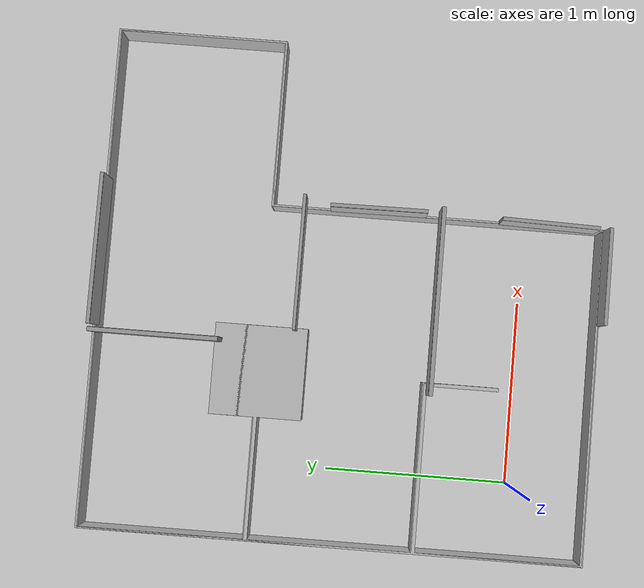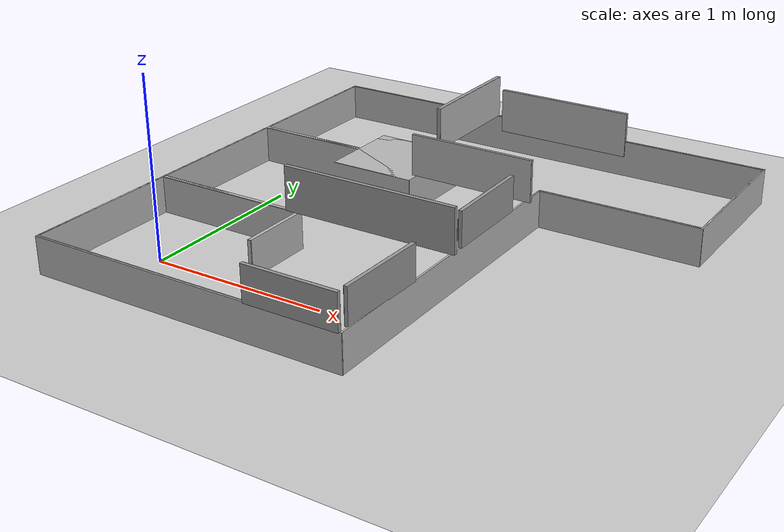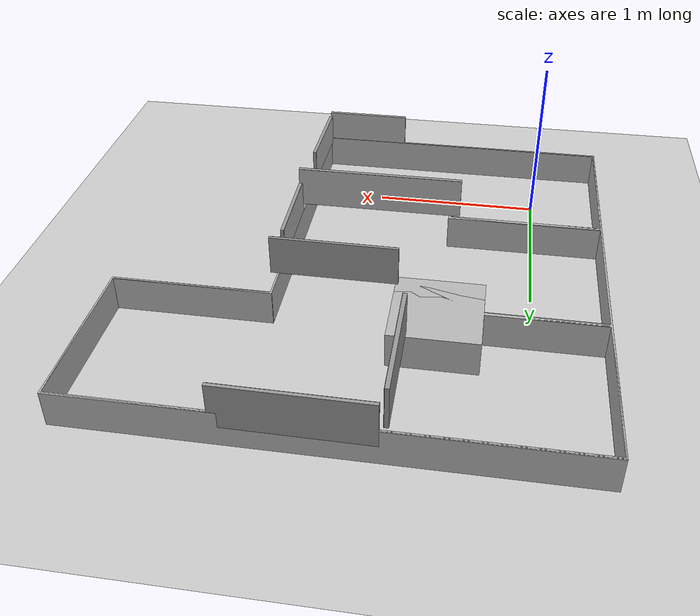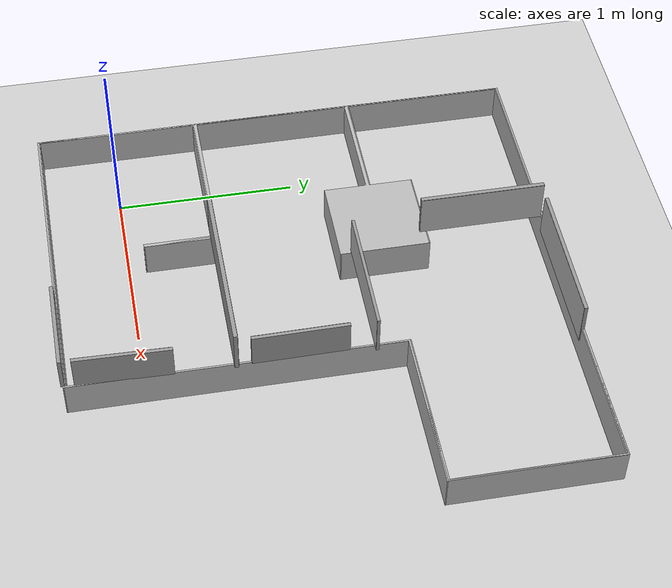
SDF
<sdf version="1.7">
 <world name="default">
  <light name="sun" type="directional">
   <pose>0 0 10 0 -0 0</pose>
   <diffuse>0.8 0.8 0.8 1</diffuse>
   <specular>0.2 0.2 0.2 1</specular>
   <attenuation>
    <range>1000</range>
    <constant>0.9</constant>
    <linear>0.01</linear>
    <quadratic>0.001</quadratic>
   </attenuation>
   <direction>-0.5 0.1 -0.9</direction>
   <spot><inner_angle>0</inner_angle><outer_angle>0</outer_angle><falloff>0</falloff></spot>
  </light>
  <model name="ground_plane">
   <static>1</static>
   <link name="link">
    <collision name="collision">
     <geometry><plane><normal>0 0 1</normal><size>100 100</size></plane></geometry>
     <surface>
      <contact><collide_bitmask>65535</collide_bitmask></contact>
      <friction><ode><mu>100</mu><mu2>50</mu2></ode></friction>
     </surface>
    </collision>
    <visual name="visual">
     <cast_shadows>0</cast_shadows>
     <geometry><plane><normal>0 0 1</normal><size>100 100</size></plane></geometry>
     <material>
      <script><uri>file://media/materials/scripts/gazebo.material</uri><name>Gazebo/Grey</name></script>
     </material>
    </visual>
   </link>
  </model>
  <gravity>0 0 -9.8</gravity>
  <magnetic_field>6e-06 2.3e-05 -4.2e-05</magnetic_field>
  <atmosphere type="adiabatic"/>
  <physics type="ode">
   <max_step_size>0.001</max_step_size>
   <real_time_factor>1</real_time_factor>
   <real_time_update_rate>1000</real_time_update_rate>
  </physics>
  <scene><ambient>0.4 0.4 0.4 1</ambient><background>0.7 0.7 0.7 1</background><shadows>1</shadows></scene>
  <audio><device>default</device></audio>
  <spherical_coordinates>
   <surface_model>EARTH_WGS84</surface_model>
   <latitude_deg>0</latitude_deg>
   <longitude_deg>0</longitude_deg>
   <elevation>0</elevation>
   <heading_deg>0</heading_deg>
  </spherical_coordinates>
  <model name="1">
   <static>1</static>
   <link name="link_0">
    <pose>0 0 0 0 0 -1.57106</pose>
    <visual name="visual">
     <geometry><box><size>0.019959 0.522549 0.197075</size></box></geometry>
     <material>
      <script><uri>file://media/materials/scripts/gazebo.material</uri><name>Gazebo/Grey</name></script>
     </material>
    </visual>
    <visual name="signboard_visual">
     <pose>-0.01 0 0 0 -0 0</pose>
     <geometry><box><size>0.001 0.522549 0.197075</size></box></geometry>
     <material>
      <script>
       <uri>model://1/materials/scripts</uri>
       <uri>model://1/materials/textures</uri>
       <name>Model_1/Texture</name>
      </script>
     </material>
    </visual>
   </link>
   <pose>1.16088 -0.425463 0.307517 0 -0 0</pose>
  </model>
  <model name="my_map">
   <static>1</static>
   <link name="link">
    <visual name="visual">
     <geometry><mesh><uri>model://middle/meshes/middle.obj</uri><scale>1 1 1</scale></mesh></geometry>
    </visual>
    <collision name="collision">
     <geometry><mesh><uri>model://middle/meshes/middle.obj</uri><scale>1 1 1</scale></mesh></geometry>
    </collision>
   </link>
   <pose>-0.398667 -0.41538 0 0 -0 0</pose>
  </model>
  <model name="2">
   <static>1</static>
   <link name="link_0">
    <pose>0 0 0.1 0 0 -1.57106</pose>
    <visual name="visual">
     <geometry><box><size>0.019959 0.522549 0.197075</size></box></geometry>
     <material>
      <script><uri>file://media/materials/scripts/gazebo.material</uri><name>Gazebo/Grey</name></script>
     </material>
    </visual>
    <visual name="signboard_visual">
     <pose>0.01 0 0 0 -0 0</pose>
     <geometry><box><size>0.001 0.522549 0.197075</size></box></geometry>
     <material>
      <script>
       <uri>model://2/materials/scripts</uri>
       <uri>model://2/materials/textures</uri>
       <name>Model_2/Texture</name>
      </script>
     </material>
    </visual>
   </link>
   <pose>1.42073 -0.104513 0.204833 0 -0 -1.59302</pose>
  </model>
  <model name="3">
   <static>1</static>
   <link name="link_2">
    <visual name="visual">
     <geometry><box><size>1.00337 0.022003 0.247839</size></box></geometry>
     <material>
      <script><uri>file://media/materials/scripts/gazebo.material</uri><name>Gazebo/Grey</name></script>
     </material>
    </visual>
    <visual name="signboard_visual">
     <pose>0 0.012 0 0 -0 0</pose>
     <geometry><box><size>1.00337 0.001 0.247839</size></box></geometry>
     <material>
      <script>
       <uri>model://3/materials/scripts</uri>
       <uri>model://3/materials/textures</uri>
       <name>Model_3/Texture</name>
      </script>
     </material>
    </visual>
   </link>
   <pose>0.955435 0.477181 0.340595 0 -0 0</pose>
  </model>
  <model name="4">
   <static>1</static>
   <link name="link_0">
    <pose>0 0 0 0 0 -1.57106</pose>
    <visual name="visual">
     <geometry><box><size>0.019959 0.522549 0.197075</size></box></geometry>
     <material>
      <script><uri>file://media/materials/scripts/gazebo.material</uri><name>Gazebo/Grey</name></script>
     </material>
    </visual>
    <visual name="signboard_visual">
     <pose>0.011 0 0 0 -0 0</pose>
     <geometry><box><size>0.001 0.522549 0.197075</size></box></geometry>
     <material>
      <script>
       <uri>model://4/materials/scripts</uri>
       <uri>model://4/materials/textures</uri>
       <name>Model_4/Texture</name>
      </script>
     </material>
    </visual>
   </link>
   <pose>1.43016 0.82025 0.311025 0 0 -1.56183</pose>
  </model>
  <model name="5">
   <static>1</static>
   <link name="link_3">
    <visual name="visual">
     <geometry><box><size>0.723514 0.016796 0.235099</size></box></geometry>
     <material>
      <script><uri>file://media/materials/scripts/gazebo.material</uri><name>Gazebo/Grey</name></script>
     </material>
    </visual>
    <visual name="signboard_visual">
     <pose>0 0.009 0 0 -0 0</pose>
     <geometry><box><size>0.723514 0.001 0.235099</size></box></geometry>
     <material>
      <script>
       <uri>model://5/materials/scripts</uri>
       <uri>model://5/materials/textures</uri>
       <name>Model_5/Texture</name>
      </script>
     </material>
    </visual>
   </link>
   <pose>1.10677 1.22206 0.335021 0 -0 3.13793</pose>
  </model>
  <model name="6">
   <static>1</static>
   <link name="link_4">
    <visual name="visual">
     <geometry><box><size>0.022928 0.691481 0.245119</size></box></geometry>
     <material>
      <script><uri>file://media/materials/scripts/gazebo.material</uri><name>Gazebo/Grey</name></script>
     </material>
    </visual>
    <visual name="signboard_visual">
     <pose>0.013 0 0 0 -0 0</pose>
     <geometry><box><size>0.001 0.691481 0.245119</size></box></geometry>
     <material>
      <script>
       <uri>model://6/materials/scripts</uri>
       <uri>model://6/materials/textures</uri>
       <name>Model_6/Texture</name>
      </script>
     </material>
    </visual>
   </link>
   <pose>0.66574 1.96335 0.340953 0 -0 0</pose>
  </model>
  <model name="7">
   <static>1</static>
   <link name="link_5">
    <visual name="visual">
     <geometry><box><size>0.815204 0.020098 0.262382</size></box></geometry>
     <material>
      <script><uri>file://media/materials/scripts/gazebo.material</uri><name>Gazebo/Grey</name></script>
     </material>
    </visual>
    <visual name="signboard_visual">
     <pose>0 0.011 0 0 -0 0</pose>
     <geometry><box><size>0.815204 0.001 0.262382</size></box></geometry>
     <material>
      <script>
       <uri>model://7/materials/scripts</uri>
       <uri>model://7/materials/textures</uri>
       <name>Model_7/Texture</name>
      </script>
     </material>
    </visual>
   </link>
   <pose>1.10384 2.32221 0.249647 0 -0 3.13545</pose>
  </model>
  <model name="my_map_0">
   <static>1</static>
   <link name="link">
    <visual name="visual">
     <geometry><mesh><uri>model://middle/meshes/middle.dae</uri><scale>1 1 1</scale></mesh></geometry>
    </visual>
    <collision name="collision">
     <geometry><mesh><uri>model://middle/meshes/middle.dae</uri><scale>1 1 1</scale></mesh></geometry>
     <surface><friction><ode><mu>1</mu><mu2>1</mu2></ode></friction></surface>
    </collision>
   </link>
   <pose>-0.398333 -0.409956 0 0 -0 0</pose>
  </model>
 </world>
</sdf>
